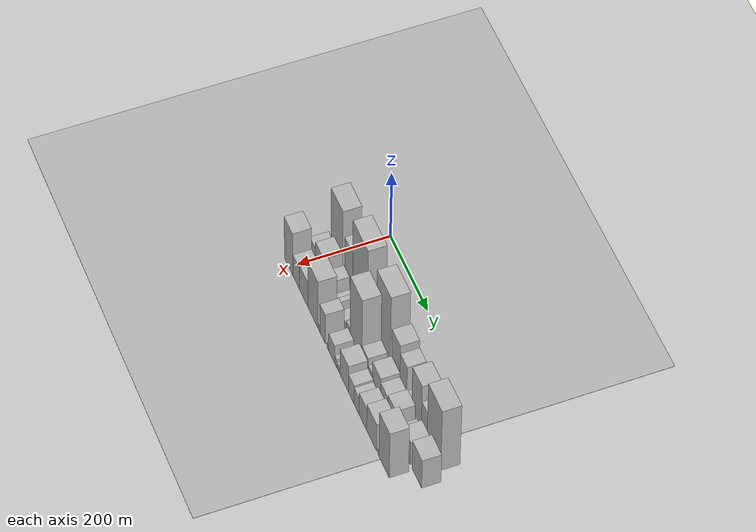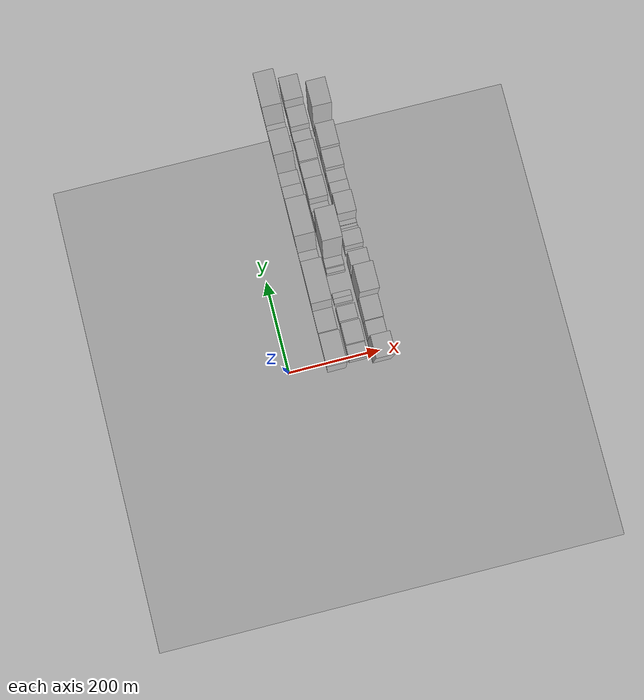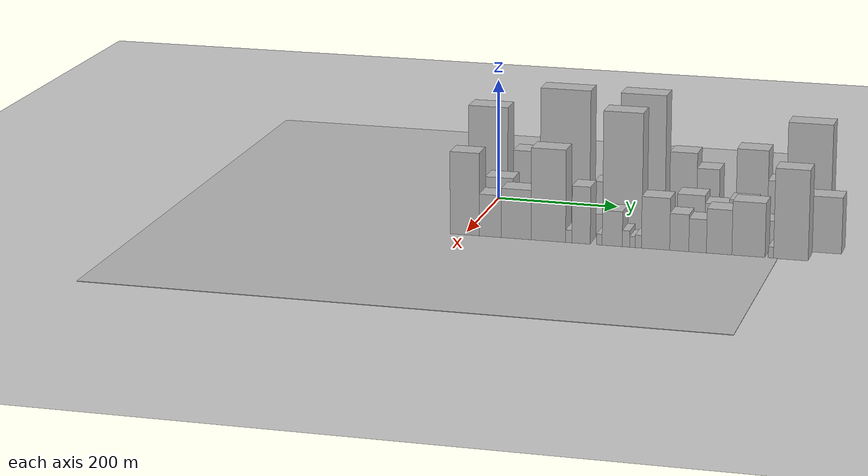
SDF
<sdf version="1.6">
 <world name="default">
  <include><name>ground_plane_1</name><uri>model://HANNAS_ground_plane</uri></include>
  <include>
   <name>ground_plane_2</name>
   <uri>model://HANNAS_ground_plane</uri>
   <pose>100 0 0  0 0 0</pose>
  </include>
  <model name="building_16">
   <static>1</static>
   <pose>100.0000 13.4674 0 0.000000 0.000000 0.000000</pose>
   <link name="link">
    <pose>0 0 93.00 0 0 0</pose>
    <collision name="collision"><geometry><box><size>40.0000 64.6390 186.0000</size></box></geometry></collision>
    <visual name="visual">
     <cast_shadows>0</cast_shadows>
     <geometry><box><size>40.0000 64.6390 186.0000</size></box></geometry>
     <material>
      <script>
       <uri>model://HANNAS_wall/materials/scripts</uri>
       <uri>model://HANNAS_wall/materials/textures</uri>
       <name>vrc/HANNAS_wall</name>
      </script>
     </material>
    </visual>
   </link>
  </model>
  <model name="building_17">
   <static>1</static>
   <pose>100.0000 77.0837 0 0.000000 0.000000 0.000000</pose>
   <link name="link">
    <pose>0 0 58.50 0 0 0</pose>
    <collision name="collision"><geometry><box><size>40.0000 44.5935 117.0000</size></box></geometry></collision>
    <visual name="visual">
     <cast_shadows>0</cast_shadows>
     <geometry><box><size>40.0000 44.5935 117.0000</size></box></geometry>
     <material>
      <script>
       <uri>model://HANNAS_wall/materials/scripts</uri>
       <uri>model://HANNAS_wall/materials/textures</uri>
       <name>vrc/HANNAS_wall</name>
      </script>
     </material>
    </visual>
   </link>
  </model>
  <model name="building_18">
   <static>1</static>
   <pose>100.0000 140.0702 0 0.000000 0.000000 0.000000</pose>
   <link name="link">
    <pose>0 0 111.00 0 0 0</pose>
    <collision name="collision"><geometry><box><size>40.0000 81.3795 222.0000</size></box></geometry></collision>
    <visual name="visual">
     <cast_shadows>0</cast_shadows>
     <geometry><box><size>40.0000 81.3795 222.0000</size></box></geometry>
     <material>
      <script>
       <uri>model://HANNAS_wall/materials/scripts</uri>
       <uri>model://HANNAS_wall/materials/textures</uri>
       <name>vrc/HANNAS_wall</name>
      </script>
     </material>
    </visual>
   </link>
  </model>
  <model name="building_19">
   <static>1</static>
   <pose>100.0000 184.8015 0 0.000000 0.000000 0.000000</pose>
   <link name="link">
    <pose>0 0 9.00 0 0 0</pose>
    <collision name="collision"><geometry><box><size>40.0000 8.0831 18.0000</size></box></geometry></collision>
    <visual name="visual">
     <cast_shadows>0</cast_shadows>
     <geometry><box><size>40.0000 8.0831 18.0000</size></box></geometry>
     <material>
      <script>
       <uri>model://HANNAS_wall/materials/scripts</uri>
       <uri>model://HANNAS_wall/materials/textures</uri>
       <name>vrc/HANNAS_wall</name>
      </script>
     </material>
    </visual>
   </link>
  </model>
  <model name="building_20">
   <static>1</static>
   <pose>100.0000 209.0936 0 0.000000 0.000000 0.000000</pose>
   <link name="link">
    <pose>0 0 37.50 0 0 0</pose>
    <collision name="collision"><geometry><box><size>40.0000 40.5012 75.0000</size></box></geometry></collision>
    <visual name="visual">
     <cast_shadows>0</cast_shadows>
     <geometry><box><size>40.0000 40.5012 75.0000</size></box></geometry>
     <material>
      <script>
       <uri>model://HANNAS_wall/materials/scripts</uri>
       <uri>model://HANNAS_wall/materials/textures</uri>
       <name>vrc/HANNAS_wall</name>
      </script>
     </material>
    </visual>
   </link>
  </model>
  <model name="building_21">
   <static>1</static>
   <pose>100.0000 266.0082 0 0.000000 0.000000 0.000000</pose>
   <link name="link">
    <pose>0 0 111.00 0 0 0</pose>
    <collision name="collision"><geometry><box><size>40.0000 73.3279 222.0000</size></box></geometry></collision>
    <visual name="visual">
     <cast_shadows>0</cast_shadows>
     <geometry><box><size>40.0000 73.3279 222.0000</size></box></geometry>
     <material>
      <script>
       <uri>model://HANNAS_wall/materials/scripts</uri>
       <uri>model://HANNAS_wall/materials/textures</uri>
       <name>vrc/HANNAS_wall</name>
      </script>
     </material>
    </visual>
   </link>
  </model>
  <model name="building_22">
   <static>1</static>
   <pose>100.0000 331.4703 0 0.000000 0.000000 0.000000</pose>
   <link name="link">
    <pose>0 0 66.00 0 0 0</pose>
    <collision name="collision"><geometry><box><size>40.0000 43.5963 132.0000</size></box></geometry></collision>
    <visual name="visual">
     <cast_shadows>0</cast_shadows>
     <geometry><box><size>40.0000 43.5963 132.0000</size></box></geometry>
     <material>
      <script>
       <uri>model://HANNAS_wall/materials/scripts</uri>
       <uri>model://HANNAS_wall/materials/textures</uri>
       <name>vrc/HANNAS_wall</name>
      </script>
     </material>
    </visual>
   </link>
  </model>
  <model name="building_23">
   <static>1</static>
   <pose>100.0000 371.3016 0 0.000000 0.000000 0.000000</pose>
   <link name="link">
    <pose>0 0 54.00 0 0 0</pose>
    <collision name="collision"><geometry><box><size>40.0000 36.0664 108.0000</size></box></geometry></collision>
    <visual name="visual">
     <cast_shadows>0</cast_shadows>
     <geometry><box><size>40.0000 36.0664 108.0000</size></box></geometry>
     <material>
      <script>
       <uri>model://HANNAS_wall/materials/scripts</uri>
       <uri>model://HANNAS_wall/materials/textures</uri>
       <name>vrc/HANNAS_wall</name>
      </script>
     </material>
    </visual>
   </link>
  </model>
  <model name="building_24">
   <static>1</static>
   <pose>100.0000 399.0295 0 0.000000 0.000000 0.000000</pose>
   <link name="link">
    <pose>0 0 16.50 0 0 0</pose>
    <collision name="collision"><geometry><box><size>40.0000 19.3893 33.0000</size></box></geometry></collision>
    <visual name="visual">
     <cast_shadows>0</cast_shadows>
     <geometry><box><size>40.0000 19.3893 33.0000</size></box></geometry>
     <material>
      <script>
       <uri>model://HANNAS_wall/materials/scripts</uri>
       <uri>model://HANNAS_wall/materials/textures</uri>
       <name>vrc/HANNAS_wall</name>
      </script>
     </material>
    </visual>
   </link>
  </model>
  <model name="building_25">
   <static>1</static>
   <pose>100.0000 412.3815 0 0.000000 0.000000 0.000000</pose>
   <link name="link">
    <pose>0 0 7.50 0 0 0</pose>
    <collision name="collision"><geometry><box><size>40.0000 7.3146 15.0000</size></box></geometry></collision>
    <visual name="visual">
     <cast_shadows>0</cast_shadows>
     <geometry><box><size>40.0000 7.3146 15.0000</size></box></geometry>
     <material>
      <script>
       <uri>model://HANNAS_wall/materials/scripts</uri>
       <uri>model://HANNAS_wall/materials/textures</uri>
       <name>vrc/HANNAS_wall</name>
      </script>
     </material>
    </visual>
   </link>
  </model>
  <model name="building_26">
   <static>1</static>
   <pose>100.0000 441.1914 0 0.000000 0.000000 0.000000</pose>
   <link name="link">
    <pose>0 0 72.00 0 0 0</pose>
    <collision name="collision"><geometry><box><size>40.0000 50.3052 144.0000</size></box></geometry></collision>
    <visual name="visual">
     <cast_shadows>0</cast_shadows>
     <geometry><box><size>40.0000 50.3052 144.0000</size></box></geometry>
     <material>
      <script>
       <uri>model://HANNAS_wall/materials/scripts</uri>
       <uri>model://HANNAS_wall/materials/textures</uri>
       <name>vrc/HANNAS_wall</name>
      </script>
     </material>
    </visual>
   </link>
  </model>
  <model name="building_27">
   <static>1</static>
   <pose>100.0000 481.0401 0 0.000000 0.000000 0.000000</pose>
   <link name="link">
    <pose>0 0 48.00 0 0 0</pose>
    <collision name="collision"><geometry><box><size>40.0000 29.3922 96.0000</size></box></geometry></collision>
    <visual name="visual">
     <cast_shadows>0</cast_shadows>
     <geometry><box><size>40.0000 29.3922 96.0000</size></box></geometry>
     <material>
      <script>
       <uri>model://HANNAS_wall/materials/scripts</uri>
       <uri>model://HANNAS_wall/materials/textures</uri>
       <name>vrc/HANNAS_wall</name>
      </script>
     </material>
    </visual>
   </link>
  </model>
  <model name="building_28">
   <static>1</static>
   <pose>100.0000 530.9056 0 0.000000 0.000000 0.000000</pose>
   <link name="link">
    <pose>0 0 96.00 0 0 0</pose>
    <collision name="collision"><geometry><box><size>40.0000 70.3389 192.0000</size></box></geometry></collision>
    <visual name="visual">
     <cast_shadows>0</cast_shadows>
     <geometry><box><size>40.0000 70.3389 192.0000</size></box></geometry>
     <material>
      <script>
       <uri>model://HANNAS_wall/materials/scripts</uri>
       <uri>model://HANNAS_wall/materials/textures</uri>
       <name>vrc/HANNAS_wall</name>
      </script>
     </material>
    </visual>
   </link>
  </model>
  <model name="building_46">
   <static>1</static>
   <pose>149.0000 5.8335 0 0.000000 0.000000 0.000000</pose>
   <link name="link">
    <pose>0 0 31.50 0 0 0</pose>
    <collision name="collision"><geometry><box><size>40.0000 31.6391 63.0000</size></box></geometry></collision>
    <visual name="visual">
     <cast_shadows>0</cast_shadows>
     <geometry><box><size>40.0000 31.6391 63.0000</size></box></geometry>
     <material>
      <script>
       <uri>model://HANNAS_wall/materials/scripts</uri>
       <uri>model://HANNAS_wall/materials/textures</uri>
       <name>vrc/HANNAS_wall</name>
      </script>
     </material>
    </visual>
   </link>
  </model>
  <model name="building_47">
   <static>1</static>
   <pose>149.0000 44.4162 0 0.000000 0.000000 0.000000</pose>
   <link name="link">
    <pose>0 0 42.00 0 0 0</pose>
    <collision name="collision"><geometry><box><size>40.0000 45.5264 84.0000</size></box></geometry></collision>
    <visual name="visual">
     <cast_shadows>0</cast_shadows>
     <geometry><box><size>40.0000 45.5264 84.0000</size></box></geometry>
     <material>
      <script>
       <uri>model://HANNAS_wall/materials/scripts</uri>
       <uri>model://HANNAS_wall/materials/textures</uri>
       <name>vrc/HANNAS_wall</name>
      </script>
     </material>
    </visual>
   </link>
  </model>
  <model name="building_48">
   <static>1</static>
   <pose>149.0000 70.5302 0 0.000000 0.000000 0.000000</pose>
   <link name="link">
    <pose>0 0 7.50 0 0 0</pose>
    <collision name="collision"><geometry><box><size>40.0000 6.7015 15.0000</size></box></geometry></collision>
    <visual name="visual">
     <cast_shadows>0</cast_shadows>
     <geometry><box><size>40.0000 6.7015 15.0000</size></box></geometry>
     <material>
      <script>
       <uri>model://HANNAS_wall/materials/scripts</uri>
       <uri>model://HANNAS_wall/materials/textures</uri>
       <name>vrc/HANNAS_wall</name>
      </script>
     </material>
    </visual>
   </link>
  </model>
  <model name="building_49">
   <static>1</static>
   <pose>149.0000 89.4554 0 0.000000 0.000000 0.000000</pose>
   <link name="link">
    <pose>0 0 27.00 0 0 0</pose>
    <collision name="collision"><geometry><box><size>40.0000 31.1490 54.0000</size></box></geometry></collision>
    <visual name="visual">
     <cast_shadows>0</cast_shadows>
     <geometry><box><size>40.0000 31.1490 54.0000</size></box></geometry>
     <material>
      <script>
       <uri>model://HANNAS_wall/materials/scripts</uri>
       <uri>model://HANNAS_wall/materials/textures</uri>
       <name>vrc/HANNAS_wall</name>
      </script>
     </material>
    </visual>
   </link>
  </model>
  <model name="building_50">
   <static>1</static>
   <pose>149.0000 120.7398 0 0.000000 0.000000 0.000000</pose>
   <link name="link">
    <pose>0 0 13.50 0 0 0</pose>
    <collision name="collision"><geometry><box><size>40.0000 11.4197 27.0000</size></box></geometry></collision>
    <visual name="visual">
     <cast_shadows>0</cast_shadows>
     <geometry><box><size>40.0000 11.4197 27.0000</size></box></geometry>
     <material>
      <script>
       <uri>model://HANNAS_wall/materials/scripts</uri>
       <uri>model://HANNAS_wall/materials/textures</uri>
       <name>vrc/HANNAS_wall</name>
      </script>
     </material>
    </visual>
   </link>
  </model>
  <model name="building_51">
   <static>1</static>
   <pose>149.0000 132.3546 0 0.000000 0.000000 0.000000</pose>
   <link name="link">
    <pose>0 0 13.50 0 0 0</pose>
    <collision name="collision"><geometry><box><size>40.0000 11.8100 27.0000</size></box></geometry></collision>
    <visual name="visual">
     <cast_shadows>0</cast_shadows>
     <geometry><box><size>40.0000 11.8100 27.0000</size></box></geometry>
     <material>
      <script>
       <uri>model://HANNAS_wall/materials/scripts</uri>
       <uri>model://HANNAS_wall/materials/textures</uri>
       <name>vrc/HANNAS_wall</name>
      </script>
     </material>
    </visual>
   </link>
  </model>
  <model name="building_52">
   <static>1</static>
   <pose>149.0000 187.1700 0 0.000000 0.000000 0.000000</pose>
   <link name="link">
    <pose>0 0 12.00 0 0 0</pose>
    <collision name="collision"><geometry><box><size>40.0000 10.6069 24.0000</size></box></geometry></collision>
    <visual name="visual">
     <cast_shadows>0</cast_shadows>
     <geometry><box><size>40.0000 10.6069 24.0000</size></box></geometry>
     <material>
      <script>
       <uri>model://HANNAS_wall/materials/scripts</uri>
       <uri>model://HANNAS_wall/materials/textures</uri>
       <name>vrc/HANNAS_wall</name>
      </script>
     </material>
    </visual>
   </link>
  </model>
  <model name="building_53">
   <static>1</static>
   <pose>149.0000 202.4919 0 0.000000 0.000000 0.000000</pose>
   <link name="link">
    <pose>0 0 18.00 0 0 0</pose>
    <collision name="collision"><geometry><box><size>40.0000 20.0370 36.0000</size></box></geometry></collision>
    <visual name="visual">
     <cast_shadows>0</cast_shadows>
     <geometry><box><size>40.0000 20.0370 36.0000</size></box></geometry>
     <material>
      <script>
       <uri>model://HANNAS_wall/materials/scripts</uri>
       <uri>model://HANNAS_wall/materials/textures</uri>
       <name>vrc/HANNAS_wall</name>
      </script>
     </material>
    </visual>
   </link>
  </model>
  <model name="building_54">
   <static>1</static>
   <pose>149.0000 244.2710 0 0.000000 0.000000 0.000000</pose>
   <link name="link">
    <pose>0 0 102.00 0 0 0</pose>
    <collision name="collision"><geometry><box><size>40.0000 63.5211 204.0000</size></box></geometry></collision>
    <visual name="visual">
     <cast_shadows>0</cast_shadows>
     <geometry><box><size>40.0000 63.5211 204.0000</size></box></geometry>
     <material>
      <script>
       <uri>model://HANNAS_wall/materials/scripts</uri>
       <uri>model://HANNAS_wall/materials/textures</uri>
       <name>vrc/HANNAS_wall</name>
      </script>
     </material>
    </visual>
   </link>
  </model>
  <model name="building_55">
   <static>1</static>
   <pose>149.0000 292.8190 0 0.000000 0.000000 0.000000</pose>
   <link name="link">
    <pose>0 0 30.00 0 0 0</pose>
    <collision name="collision"><geometry><box><size>40.0000 33.5747 60.0000</size></box></geometry></collision>
    <visual name="visual">
     <cast_shadows>0</cast_shadows>
     <geometry><box><size>40.0000 33.5747 60.0000</size></box></geometry>
     <material>
      <script>
       <uri>model://HANNAS_wall/materials/scripts</uri>
       <uri>model://HANNAS_wall/materials/textures</uri>
       <name>vrc/HANNAS_wall</name>
      </script>
     </material>
    </visual>
   </link>
  </model>
  <model name="building_56">
   <static>1</static>
   <pose>149.0000 320.6605 0 0.000000 0.000000 0.000000</pose>
   <link name="link">
    <pose>0 0 19.50 0 0 0</pose>
    <collision name="collision"><geometry><box><size>40.0000 22.1084 39.0000</size></box></geometry></collision>
    <visual name="visual">
     <cast_shadows>0</cast_shadows>
     <geometry><box><size>40.0000 22.1084 39.0000</size></box></geometry>
     <material>
      <script>
       <uri>model://HANNAS_wall/materials/scripts</uri>
       <uri>model://HANNAS_wall/materials/textures</uri>
       <name>vrc/HANNAS_wall</name>
      </script>
     </material>
    </visual>
   </link>
  </model>
  <model name="building_57">
   <static>1</static>
   <pose>149.0000 353.8151 0 0.000000 0.000000 0.000000</pose>
   <link name="link">
    <pose>0 0 39.00 0 0 0</pose>
    <collision name="collision"><geometry><box><size>40.0000 44.2007 78.0000</size></box></geometry></collision>
    <visual name="visual">
     <cast_shadows>0</cast_shadows>
     <geometry><box><size>40.0000 44.2007 78.0000</size></box></geometry>
     <material>
      <script>
       <uri>model://HANNAS_wall/materials/scripts</uri>
       <uri>model://HANNAS_wall/materials/textures</uri>
       <name>vrc/HANNAS_wall</name>
      </script>
     </material>
    </visual>
   </link>
  </model>
  <model name="building_58">
   <static>1</static>
   <pose>149.0000 395.0756 0 0.000000 0.000000 0.000000</pose>
   <link name="link">
    <pose>0 0 33.00 0 0 0</pose>
    <collision name="collision"><geometry><box><size>40.0000 38.3203 66.0000</size></box></geometry></collision>
    <visual name="visual">
     <cast_shadows>0</cast_shadows>
     <geometry><box><size>40.0000 38.3203 66.0000</size></box></geometry>
     <material>
      <script>
       <uri>model://HANNAS_wall/materials/scripts</uri>
       <uri>model://HANNAS_wall/materials/textures</uri>
       <name>vrc/HANNAS_wall</name>
      </script>
     </material>
    </visual>
   </link>
  </model>
  <model name="building_59">
   <static>1</static>
   <pose>149.0000 435.0544 0 0.000000 0.000000 0.000000</pose>
   <link name="link">
    <pose>0 0 37.50 0 0 0</pose>
    <collision name="collision"><geometry><box><size>40.0000 41.6372 75.0000</size></box></geometry></collision>
    <visual name="visual">
     <cast_shadows>0</cast_shadows>
     <geometry><box><size>40.0000 41.6372 75.0000</size></box></geometry>
     <material>
      <script>
       <uri>model://HANNAS_wall/materials/scripts</uri>
       <uri>model://HANNAS_wall/materials/textures</uri>
       <name>vrc/HANNAS_wall</name>
      </script>
     </material>
    </visual>
   </link>
  </model>
  <model name="building_60">
   <static>1</static>
   <pose>149.0000 478.0425 0 0.000000 0.000000 0.000000</pose>
   <link name="link">
    <pose>0 0 22.50 0 0 0</pose>
    <collision name="collision"><geometry><box><size>40.0000 24.3391 45.0000</size></box></geometry></collision>
    <visual name="visual">
     <cast_shadows>0</cast_shadows>
     <geometry><box><size>40.0000 24.3391 45.0000</size></box></geometry>
     <material>
      <script>
       <uri>model://HANNAS_wall/materials/scripts</uri>
       <uri>model://HANNAS_wall/materials/textures</uri>
       <name>vrc/HANNAS_wall</name>
      </script>
     </material>
    </visual>
   </link>
  </model>
  <model name="building_61">
   <static>1</static>
   <pose>149.0000 511.3003 0 0.000000 0.000000 0.000000</pose>
   <link name="link">
    <pose>0 0 36.00 0 0 0</pose>
    <collision name="collision"><geometry><box><size>40.0000 42.1766 72.0000</size></box></geometry></collision>
    <visual name="visual">
     <cast_shadows>0</cast_shadows>
     <geometry><box><size>40.0000 42.1766 72.0000</size></box></geometry>
     <material>
      <script>
       <uri>model://HANNAS_wall/materials/scripts</uri>
       <uri>model://HANNAS_wall/materials/textures</uri>
       <name>vrc/HANNAS_wall</name>
      </script>
     </material>
    </visual>
   </link>
  </model>
  <model name="building_62">
   <static>1</static>
   <pose>149.0000 565.7394 0 0.000000 0.000000 0.000000</pose>
   <link name="link">
    <pose>0 0 45.00 0 0 0</pose>
    <collision name="collision"><geometry><box><size>40.0000 50.7016 90.0000</size></box></geometry></collision>
    <visual name="visual">
     <cast_shadows>0</cast_shadows>
     <geometry><box><size>40.0000 50.7016 90.0000</size></box></geometry>
     <material>
      <script>
       <uri>model://HANNAS_wall/materials/scripts</uri>
       <uri>model://HANNAS_wall/materials/textures</uri>
       <name>vrc/HANNAS_wall</name>
      </script>
     </material>
    </visual>
   </link>
  </model>
  <model name="building_80">
   <static>1</static>
   <pose>198.0000 0.5389 0 0.000000 0.000000 0.000000</pose>
   <link name="link">
    <pose>0 0 67.50 0 0 0</pose>
    <collision name="collision"><geometry><box><size>40.0000 47.3057 135.0000</size></box></geometry></collision>
    <visual name="visual">
     <cast_shadows>0</cast_shadows>
     <geometry><box><size>40.0000 47.3057 135.0000</size></box></geometry>
     <material>
      <script>
       <uri>model://HANNAS_wall/materials/scripts</uri>
       <uri>model://HANNAS_wall/materials/textures</uri>
       <name>vrc/HANNAS_wall</name>
      </script>
     </material>
    </visual>
   </link>
  </model>
  <model name="building_81">
   <static>1</static>
   <pose>198.0000 42.3640 0 0.000000 0.000000 0.000000</pose>
   <link name="link">
    <pose>0 0 34.50 0 0 0</pose>
    <collision name="collision"><geometry><box><size>40.0000 36.3444 69.0000</size></box></geometry></collision>
    <visual name="visual">
     <cast_shadows>0</cast_shadows>
     <geometry><box><size>40.0000 36.3444 69.0000</size></box></geometry>
     <material>
      <script>
       <uri>model://HANNAS_wall/materials/scripts</uri>
       <uri>model://HANNAS_wall/materials/textures</uri>
       <name>vrc/HANNAS_wall</name>
      </script>
     </material>
    </visual>
   </link>
  </model>
  <model name="building_82">
   <static>1</static>
   <pose>198.0000 84.5883 0 0.000000 0.000000 0.000000</pose>
   <link name="link">
    <pose>0 0 40.50 0 0 0</pose>
    <collision name="collision"><geometry><box><size>40.0000 48.1041 81.0000</size></box></geometry></collision>
    <visual name="visual">
     <cast_shadows>0</cast_shadows>
     <geometry><box><size>40.0000 48.1041 81.0000</size></box></geometry>
     <material>
      <script>
       <uri>model://HANNAS_wall/materials/scripts</uri>
       <uri>model://HANNAS_wall/materials/textures</uri>
       <name>vrc/HANNAS_wall</name>
      </script>
     </material>
    </visual>
   </link>
  </model>
  <model name="building_83">
   <static>1</static>
   <pose>198.0000 136.4898 0 0.000000 0.000000 0.000000</pose>
   <link name="link">
    <pose>0 0 75.00 0 0 0</pose>
    <collision name="collision"><geometry><box><size>40.0000 55.6989 150.0000</size></box></geometry></collision>
    <visual name="visual">
     <cast_shadows>0</cast_shadows>
     <geometry><box><size>40.0000 55.6989 150.0000</size></box></geometry>
     <material>
      <script>
       <uri>model://HANNAS_wall/materials/scripts</uri>
       <uri>model://HANNAS_wall/materials/textures</uri>
       <name>vrc/HANNAS_wall</name>
      </script>
     </material>
    </visual>
   </link>
  </model>
  <model name="building_84">
   <static>1</static>
   <pose>198.0000 169.3611 0 0.000000 0.000000 0.000000</pose>
   <link name="link">
    <pose>0 0 10.50 0 0 0</pose>
    <collision name="collision"><geometry><box><size>40.0000 10.0437 21.0000</size></box></geometry></collision>
    <visual name="visual">
     <cast_shadows>0</cast_shadows>
     <geometry><box><size>40.0000 10.0437 21.0000</size></box></geometry>
     <material>
      <script>
       <uri>model://HANNAS_wall/materials/scripts</uri>
       <uri>model://HANNAS_wall/materials/textures</uri>
       <name>vrc/HANNAS_wall</name>
      </script>
     </material>
    </visual>
   </link>
  </model>
  <model name="building_85">
   <static>1</static>
   <pose>198.0000 189.1591 0 0.000000 0.000000 0.000000</pose>
   <link name="link">
    <pose>0 0 46.50 0 0 0</pose>
    <collision name="collision"><geometry><box><size>40.0000 29.5523 93.0000</size></box></geometry></collision>
    <visual name="visual">
     <cast_shadows>0</cast_shadows>
     <geometry><box><size>40.0000 29.5523 93.0000</size></box></geometry>
     <material>
      <script>
       <uri>model://HANNAS_wall/materials/scripts</uri>
       <uri>model://HANNAS_wall/materials/textures</uri>
       <name>vrc/HANNAS_wall</name>
      </script>
     </material>
    </visual>
   </link>
  </model>
  <model name="building_86">
   <static>1</static>
   <pose>198.0000 218.3947 0 0.000000 0.000000 0.000000</pose>
   <link name="link">
    <pose>0 0 9.00 0 0 0</pose>
    <collision name="collision"><geometry><box><size>40.0000 8.9187 18.0000</size></box></geometry></collision>
    <visual name="visual">
     <cast_shadows>0</cast_shadows>
     <geometry><box><size>40.0000 8.9187 18.0000</size></box></geometry>
     <material>
      <script>
       <uri>model://HANNAS_wall/materials/scripts</uri>
       <uri>model://HANNAS_wall/materials/textures</uri>
       <name>vrc/HANNAS_wall</name>
      </script>
     </material>
    </visual>
   </link>
  </model>
  <model name="building_87">
   <static>1</static>
   <pose>198.0000 239.0050 0 0.000000 0.000000 0.000000</pose>
   <link name="link">
    <pose>0 0 28.50 0 0 0</pose>
    <collision name="collision"><geometry><box><size>40.0000 32.3020 57.0000</size></box></geometry></collision>
    <visual name="visual">
     <cast_shadows>0</cast_shadows>
     <geometry><box><size>40.0000 32.3020 57.0000</size></box></geometry>
     <material>
      <script>
       <uri>model://HANNAS_wall/materials/scripts</uri>
       <uri>model://HANNAS_wall/materials/textures</uri>
       <name>vrc/HANNAS_wall</name>
      </script>
     </material>
    </visual>
   </link>
  </model>
  <model name="building_88">
   <static>1</static>
   <pose>198.0000 261.1348 0 0.000000 0.000000 0.000000</pose>
   <link name="link">
    <pose>0 0 13.50 0 0 0</pose>
    <collision name="collision"><geometry><box><size>40.0000 11.9576 27.0000</size></box></geometry></collision>
    <visual name="visual">
     <cast_shadows>0</cast_shadows>
     <geometry><box><size>40.0000 11.9576 27.0000</size></box></geometry>
     <material>
      <script>
       <uri>model://HANNAS_wall/materials/scripts</uri>
       <uri>model://HANNAS_wall/materials/textures</uri>
       <name>vrc/HANNAS_wall</name>
      </script>
     </material>
    </visual>
   </link>
  </model>
  <model name="building_89">
   <static>1</static>
   <pose>198.0000 271.3516 0 0.000000 0.000000 0.000000</pose>
   <link name="link">
    <pose>0 0 9.00 0 0 0</pose>
    <collision name="collision"><geometry><box><size>40.0000 8.4758 18.0000</size></box></geometry></collision>
    <visual name="visual">
     <cast_shadows>0</cast_shadows>
     <geometry><box><size>40.0000 8.4758 18.0000</size></box></geometry>
     <material>
      <script>
       <uri>model://HANNAS_wall/materials/scripts</uri>
       <uri>model://HANNAS_wall/materials/textures</uri>
       <name>vrc/HANNAS_wall</name>
      </script>
     </material>
    </visual>
   </link>
  </model>
  <model name="building_90">
   <static>1</static>
   <pose>198.0000 280.4929 0 0.000000 0.000000 0.000000</pose>
   <link name="link">
    <pose>0 0 10.50 0 0 0</pose>
    <collision name="collision"><geometry><box><size>40.0000 9.8068 21.0000</size></box></geometry></collision>
    <visual name="visual">
     <cast_shadows>0</cast_shadows>
     <geometry><box><size>40.0000 9.8068 21.0000</size></box></geometry>
     <material>
      <script>
       <uri>model://HANNAS_wall/materials/scripts</uri>
       <uri>model://HANNAS_wall/materials/textures</uri>
       <name>vrc/HANNAS_wall</name>
      </script>
     </material>
    </visual>
   </link>
  </model>
  <model name="building_91">
   <static>1</static>
   <pose>198.0000 307.8484 0 0.000000 0.000000 0.000000</pose>
   <link name="link">
    <pose>0 0 42.00 0 0 0</pose>
    <collision name="collision"><geometry><box><size>40.0000 44.9043 84.0000</size></box></geometry></collision>
    <visual name="visual">
     <cast_shadows>0</cast_shadows>
     <geometry><box><size>40.0000 44.9043 84.0000</size></box></geometry>
     <material>
      <script>
       <uri>model://HANNAS_wall/materials/scripts</uri>
       <uri>model://HANNAS_wall/materials/textures</uri>
       <name>vrc/HANNAS_wall</name>
      </script>
     </material>
    </visual>
   </link>
  </model>
  <model name="building_92">
   <static>1</static>
   <pose>198.0000 345.3829 0 0.000000 0.000000 0.000000</pose>
   <link name="link">
    <pose>0 0 30.00 0 0 0</pose>
    <collision name="collision"><geometry><box><size>40.0000 30.1647 60.0000</size></box></geometry></collision>
    <visual name="visual">
     <cast_shadows>0</cast_shadows>
     <geometry><box><size>40.0000 30.1647 60.0000</size></box></geometry>
     <material>
      <script>
       <uri>model://HANNAS_wall/materials/scripts</uri>
       <uri>model://HANNAS_wall/materials/textures</uri>
       <name>vrc/HANNAS_wall</name>
      </script>
     </material>
    </visual>
   </link>
  </model>
  <model name="building_93">
   <static>1</static>
   <pose>198.0000 374.3381 0 0.000000 0.000000 0.000000</pose>
   <link name="link">
    <pose>0 0 27.00 0 0 0</pose>
    <collision name="collision"><geometry><box><size>40.0000 27.7456 54.0000</size></box></geometry></collision>
    <visual name="visual">
     <cast_shadows>0</cast_shadows>
     <geometry><box><size>40.0000 27.7456 54.0000</size></box></geometry>
     <material>
      <script>
       <uri>model://HANNAS_wall/materials/scripts</uri>
       <uri>model://HANNAS_wall/materials/textures</uri>
       <name>vrc/HANNAS_wall</name>
      </script>
     </material>
    </visual>
   </link>
  </model>
  <model name="building_94">
   <static>1</static>
   <pose>198.0000 408.1653 0 0.000000 0.000000 0.000000</pose>
   <link name="link">
    <pose>0 0 36.00 0 0 0</pose>
    <collision name="collision"><geometry><box><size>40.0000 39.9089 72.0000</size></box></geometry></collision>
    <visual name="visual">
     <cast_shadows>0</cast_shadows>
     <geometry><box><size>40.0000 39.9089 72.0000</size></box></geometry>
     <material>
      <script>
       <uri>model://HANNAS_wall/materials/scripts</uri>
       <uri>model://HANNAS_wall/materials/textures</uri>
       <name>vrc/HANNAS_wall</name>
      </script>
     </material>
    </visual>
   </link>
  </model>
  <model name="building_95">
   <static>1</static>
   <pose>198.0000 453.9884 0 0.000000 0.000000 0.000000</pose>
   <link name="link">
    <pose>0 0 43.50 0 0 0</pose>
    <collision name="collision"><geometry><box><size>40.0000 51.7373 87.0000</size></box></geometry></collision>
    <visual name="visual">
     <cast_shadows>0</cast_shadows>
     <geometry><box><size>40.0000 51.7373 87.0000</size></box></geometry>
     <material>
      <script>
       <uri>model://HANNAS_wall/materials/scripts</uri>
       <uri>model://HANNAS_wall/materials/textures</uri>
       <name>vrc/HANNAS_wall</name>
      </script>
     </material>
    </visual>
   </link>
  </model>
  <model name="building_96">
   <static>1</static>
   <pose>198.0000 488.9360 0 0.000000 0.000000 0.000000</pose>
   <link name="link">
    <pose>0 0 9.00 0 0 0</pose>
    <collision name="collision"><geometry><box><size>40.0000 8.1578 18.0000</size></box></geometry></collision>
    <visual name="visual">
     <cast_shadows>0</cast_shadows>
     <geometry><box><size>40.0000 8.1578 18.0000</size></box></geometry>
     <material>
      <script>
       <uri>model://HANNAS_wall/materials/scripts</uri>
       <uri>model://HANNAS_wall/materials/textures</uri>
       <name>vrc/HANNAS_wall</name>
      </script>
     </material>
    </visual>
   </link>
  </model>
  <model name="building_97">
   <static>1</static>
   <pose>198.0000 519.9039 0 0.000000 0.000000 0.000000</pose>
   <link name="link">
    <pose>0 0 72.00 0 0 0</pose>
    <collision name="collision"><geometry><box><size>40.0000 53.7779 144.0000</size></box></geometry></collision>
    <visual name="visual">
     <cast_shadows>0</cast_shadows>
     <geometry><box><size>40.0000 53.7779 144.0000</size></box></geometry>
     <material>
      <script>
       <uri>model://HANNAS_wall/materials/scripts</uri>
       <uri>model://HANNAS_wall/materials/textures</uri>
       <name>vrc/HANNAS_wall</name>
      </script>
     </material>
    </visual>
   </link>
  </model>
 </world>
</sdf>
